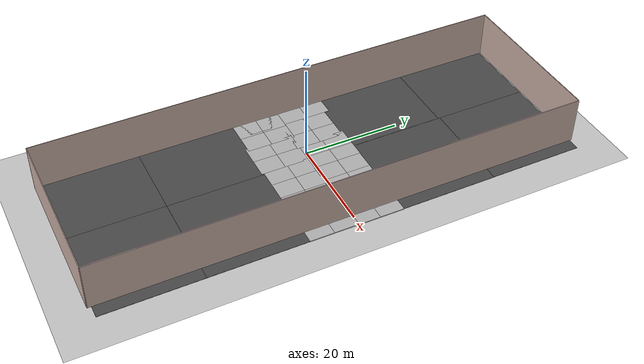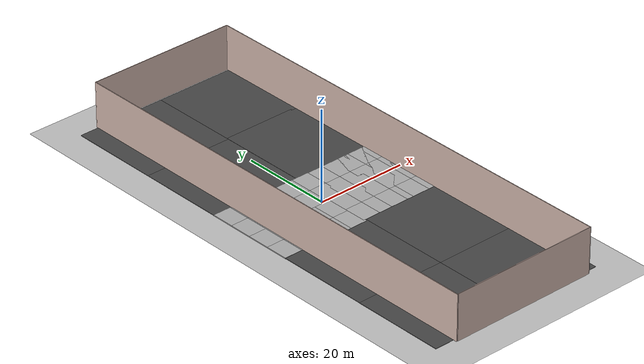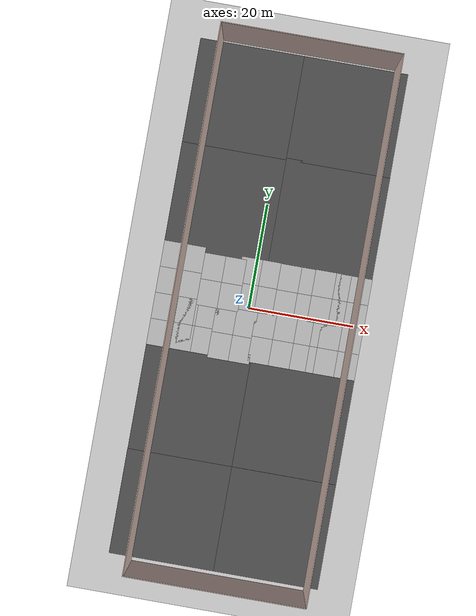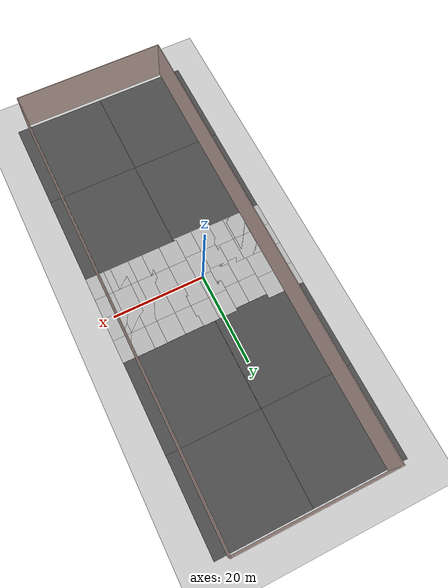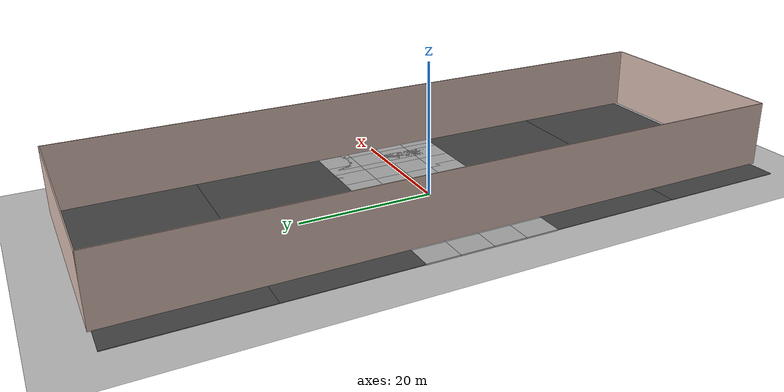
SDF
<sdf version="1.5">
 <world name="default">
  <light name="sun" type="directional">
   <pose>0 0 10 0 -0 0</pose>
   <diffuse>0.8 0.8 0.8 1</diffuse>
   <specular>0.2 0.2 0.2 1</specular>
   <attenuation>
    <range>1000</range>
    <constant>0.9</constant>
    <linear>0.01</linear>
    <quadratic>0.001</quadratic>
   </attenuation>
   <direction>-0.5 0.1 -0.9</direction>
  </light>
  <model name="ground_plane">
   <static>1</static>
   <link name="link">
    <collision name="collision">
     <geometry><plane><normal>0 0 1</normal><size>100 100</size></plane></geometry>
     <surface><friction><ode><mu>100</mu><mu2>50</mu2></ode></friction></surface>
    </collision>
    <visual name="visual">
     <cast_shadows>0</cast_shadows>
     <geometry><plane><normal>0 0 1</normal><size>100 100</size></plane></geometry>
     <material>
      <script><uri>file://media/materials/scripts/gazebo.material</uri><name>Gazebo/Grey</name></script>
     </material>
    </visual>
   </link>
  </model>
  <physics name="default_physics" default="0" type="ode">
   <max_step_size>0.001</max_step_size>
   <real_time_factor>1</real_time_factor>
   <real_time_update_rate>1000</real_time_update_rate>
   <gravity>0 0 -9.8</gravity>
   <magnetic_field>6e-06 2.3e-05 -4.2e-05</magnetic_field>
  </physics>
  <scene><ambient>0.4 0.4 0.4 1</ambient><background>0.7 0.7 0.7 1</background><shadows>1</shadows></scene>
  <audio><device>default</device></audio>
  <spherical_coordinates>
   <surface_model>EARTH_WGS84</surface_model>
   <latitude_deg>0</latitude_deg>
   <longitude_deg>0</longitude_deg>
   <elevation>0</elevation>
   <heading_deg>0</heading_deg>
  </spherical_coordinates>
  <model name="asphalt_plane">
   <static>1</static>
   <link name="link">
    <collision name="collision"><geometry><box><size>20 20 0.1</size></box></geometry></collision>
    <visual name="visual">
     <cast_shadows>0</cast_shadows>
     <geometry><box><size>20 20 0.1</size></box></geometry>
     <material>
      <script>
       <uri>model://asphalt_plane/materials/scripts</uri>
       <uri>model://asphalt_plane/materials/textures</uri>
       <name>vrc/asphalt</name>
      </script>
     </material>
    </visual>
   </link>
   <pose>-8 -40 0 0 -0 0</pose>
  </model>
  <model name="asphalt_plane_2">
   <static>1</static>
   <link name="link">
    <collision name="collision"><geometry><box><size>20 20 0.1</size></box></geometry></collision>
    <visual name="visual">
     <cast_shadows>0</cast_shadows>
     <geometry><box><size>20 20 0.1</size></box></geometry>
     <material>
      <script>
       <uri>model://asphalt_plane/materials/scripts</uri>
       <uri>model://asphalt_plane/materials/textures</uri>
       <name>vrc/asphalt</name>
      </script>
     </material>
    </visual>
   </link>
   <pose>-8 19 0 0 -0 0</pose>
  </model>
  <model name="asphalt_plane_3">
   <static>1</static>
   <link name="link">
    <collision name="collision"><geometry><box><size>20 20 0.1</size></box></geometry></collision>
    <visual name="visual">
     <cast_shadows>0</cast_shadows>
     <geometry><box><size>20 20 0.1</size></box></geometry>
     <material>
      <script>
       <uri>model://asphalt_plane/materials/scripts</uri>
       <uri>model://asphalt_plane/materials/textures</uri>
       <name>vrc/asphalt</name>
      </script>
     </material>
    </visual>
   </link>
   <pose>-8 39 0 0 -0 0</pose>
  </model>
  <model name="asphalt_plane_3_clone">
   <static>1</static>
   <link name="link">
    <collision name="collision"><geometry><box><size>20 20 0.1</size></box></geometry></collision>
    <visual name="visual">
     <cast_shadows>0</cast_shadows>
     <geometry><box><size>20 20 0.1</size></box></geometry>
     <material>
      <script>
       <uri>model://asphalt_plane/materials/scripts</uri>
       <uri>model://asphalt_plane/materials/textures</uri>
       <name>vrc/asphalt</name>
      </script>
     </material>
    </visual>
   </link>
   <pose>12 -40 0 0 -0 0</pose>
  </model>
  <model name="asphalt_plane_3_clone_2">
   <static>1</static>
   <link name="link">
    <collision name="collision"><geometry><box><size>20 20 0.1</size></box></geometry></collision>
    <visual name="visual">
     <cast_shadows>0</cast_shadows>
     <geometry><box><size>20 20 0.1</size></box></geometry>
     <material>
      <script>
       <uri>model://asphalt_plane/materials/scripts</uri>
       <uri>model://asphalt_plane/materials/textures</uri>
       <name>vrc/asphalt</name>
      </script>
     </material>
    </visual>
   </link>
   <pose>12.027 19.3791 0 0 -0 0</pose>
  </model>
  <model name="asphalt_plane_3_clone_3">
   <static>1</static>
   <link name="link">
    <collision name="collision"><geometry><box><size>20 20 0.1</size></box></geometry></collision>
    <visual name="visual">
     <cast_shadows>0</cast_shadows>
     <geometry><box><size>20 20 0.1</size></box></geometry>
     <material>
      <script>
       <uri>model://asphalt_plane/materials/scripts</uri>
       <uri>model://asphalt_plane/materials/textures</uri>
       <name>vrc/asphalt</name>
      </script>
     </material>
    </visual>
   </link>
   <pose>12 39 0 0 -0 0</pose>
  </model>
  <model name="mud_box">
   <static>1</static>
   <link name="link">
    <collision name="collision"><geometry><box><size>8 10 0.2</size></box></geometry></collision>
    <visual name="visual_1">
     <pose>-2 2.5 0 0 -0 0</pose>
     <cast_shadows>0</cast_shadows>
     <geometry><box><size>4 5 0.2</size></box></geometry>
     <material>
      <script>
       <uri>model://mud_box/materials/scripts</uri>
       <uri>model://mud_box/materials/textures</uri>
       <name>vrc/mud</name>
      </script>
     </material>
    </visual>
    <visual name="visual_2">
     <pose>2 2.5 0 0 -0 0</pose>
     <cast_shadows>0</cast_shadows>
     <geometry><box><size>4 5 0.2</size></box></geometry>
     <material>
      <script>
       <uri>model://mud_box/materials/scripts</uri>
       <uri>model://mud_box/materials/textures</uri>
       <name>vrc/mud</name>
      </script>
     </material>
    </visual>
    <visual name="visual_3">
     <pose>2 -2.5 0 0 -0 0</pose>
     <cast_shadows>0</cast_shadows>
     <geometry><box><size>4 5 0.2</size></box></geometry>
     <material>
      <script>
       <uri>model://mud_box/materials/scripts</uri>
       <uri>model://mud_box/materials/textures</uri>
       <name>vrc/mud</name>
      </script>
     </material>
    </visual>
    <visual name="visual_4">
     <pose>-2 -2.5 0 0 -0 0</pose>
     <cast_shadows>0</cast_shadows>
     <geometry><box><size>4 5 0.2</size></box></geometry>
     <material>
      <script>
       <uri>model://mud_box/materials/scripts</uri>
       <uri>model://mud_box/materials/textures</uri>
       <name>vrc/mud</name>
      </script>
     </material>
    </visual>
   </link>
   <pose>-2.1916 -5.46245 0 0 -0 0</pose>
  </model>
  <model name="mud_box_clone">
   <static>1</static>
   <link name="link">
    <collision name="collision"><geometry><box><size>8 10 0.2</size></box></geometry></collision>
    <visual name="visual_1">
     <pose>-2 2.5 0 0 -0 0</pose>
     <cast_shadows>0</cast_shadows>
     <geometry><box><size>4 5 0.2</size></box></geometry>
     <material>
      <script>
       <uri>model://mud_box/materials/scripts</uri>
       <uri>model://mud_box/materials/textures</uri>
       <name>vrc/mud</name>
      </script>
     </material>
    </visual>
    <visual name="visual_2">
     <pose>2 2.5 0 0 -0 0</pose>
     <cast_shadows>0</cast_shadows>
     <geometry><box><size>4 5 0.2</size></box></geometry>
     <material>
      <script>
       <uri>model://mud_box/materials/scripts</uri>
       <uri>model://mud_box/materials/textures</uri>
       <name>vrc/mud</name>
      </script>
     </material>
    </visual>
    <visual name="visual_3">
     <pose>2 -2.5 0 0 -0 0</pose>
     <cast_shadows>0</cast_shadows>
     <geometry><box><size>4 5 0.2</size></box></geometry>
     <material>
      <script>
       <uri>model://mud_box/materials/scripts</uri>
       <uri>model://mud_box/materials/textures</uri>
       <name>vrc/mud</name>
      </script>
     </material>
    </visual>
    <visual name="visual_4">
     <pose>-2 -2.5 0 0 -0 0</pose>
     <cast_shadows>0</cast_shadows>
     <geometry><box><size>4 5 0.2</size></box></geometry>
     <material>
      <script>
       <uri>model://mud_box/materials/scripts</uri>
       <uri>model://mud_box/materials/textures</uri>
       <name>vrc/mud</name>
      </script>
     </material>
    </visual>
   </link>
   <pose>5.42186 -5 0 0 -0 0</pose>
  </model>
  <model name="mud_box_clone_0">
   <static>1</static>
   <link name="link">
    <collision name="collision"><geometry><box><size>8 10 0.2</size></box></geometry></collision>
    <visual name="visual_1">
     <pose>-2 2.5 0 0 -0 0</pose>
     <cast_shadows>0</cast_shadows>
     <geometry><box><size>4 5 0.2</size></box></geometry>
     <material>
      <script>
       <uri>model://mud_box/materials/scripts</uri>
       <uri>model://mud_box/materials/textures</uri>
       <name>vrc/mud</name>
      </script>
     </material>
    </visual>
    <visual name="visual_2">
     <pose>2 2.5 0 0 -0 0</pose>
     <cast_shadows>0</cast_shadows>
     <geometry><box><size>4 5 0.2</size></box></geometry>
     <material>
      <script>
       <uri>model://mud_box/materials/scripts</uri>
       <uri>model://mud_box/materials/textures</uri>
       <name>vrc/mud</name>
      </script>
     </material>
    </visual>
    <visual name="visual_3">
     <pose>2 -2.5 0 0 -0 0</pose>
     <cast_shadows>0</cast_shadows>
     <geometry><box><size>4 5 0.2</size></box></geometry>
     <material>
      <script>
       <uri>model://mud_box/materials/scripts</uri>
       <uri>model://mud_box/materials/textures</uri>
       <name>vrc/mud</name>
      </script>
     </material>
    </visual>
    <visual name="visual_4">
     <pose>-2 -2.5 0 0 -0 0</pose>
     <cast_shadows>0</cast_shadows>
     <geometry><box><size>4 5 0.2</size></box></geometry>
     <material>
      <script>
       <uri>model://mud_box/materials/scripts</uri>
       <uri>model://mud_box/materials/textures</uri>
       <name>vrc/mud</name>
      </script>
     </material>
    </visual>
   </link>
   <pose>12.5135 -5 0 0 -0 0</pose>
  </model>
  <model name="mud_box_clone_1">
   <static>1</static>
   <link name="link">
    <collision name="collision"><geometry><box><size>8 10 0.2</size></box></geometry></collision>
    <visual name="visual_1">
     <pose>-2 2.5 0 0 -0 0</pose>
     <cast_shadows>0</cast_shadows>
     <geometry><box><size>4 5 0.2</size></box></geometry>
     <material>
      <script>
       <uri>model://mud_box/materials/scripts</uri>
       <uri>model://mud_box/materials/textures</uri>
       <name>vrc/mud</name>
      </script>
     </material>
    </visual>
    <visual name="visual_2">
     <pose>2 2.5 0 0 -0 0</pose>
     <cast_shadows>0</cast_shadows>
     <geometry><box><size>4 5 0.2</size></box></geometry>
     <material>
      <script>
       <uri>model://mud_box/materials/scripts</uri>
       <uri>model://mud_box/materials/textures</uri>
       <name>vrc/mud</name>
      </script>
     </material>
    </visual>
    <visual name="visual_3">
     <pose>2 -2.5 0 0 -0 0</pose>
     <cast_shadows>0</cast_shadows>
     <geometry><box><size>4 5 0.2</size></box></geometry>
     <material>
      <script>
       <uri>model://mud_box/materials/scripts</uri>
       <uri>model://mud_box/materials/textures</uri>
       <name>vrc/mud</name>
      </script>
     </material>
    </visual>
    <visual name="visual_4">
     <pose>-2 -2.5 0 0 -0 0</pose>
     <cast_shadows>0</cast_shadows>
     <geometry><box><size>4 5 0.2</size></box></geometry>
     <material>
      <script>
       <uri>model://mud_box/materials/scripts</uri>
       <uri>model://mud_box/materials/textures</uri>
       <name>vrc/mud</name>
      </script>
     </material>
    </visual>
   </link>
   <pose>18 -5 0 0 -0 0</pose>
  </model>
  <model name="mud_box_clone_2">
   <static>1</static>
   <link name="link">
    <collision name="collision"><geometry><box><size>8 10 0.2</size></box></geometry></collision>
    <visual name="visual_1">
     <pose>-2 2.5 0 0 -0 0</pose>
     <cast_shadows>0</cast_shadows>
     <geometry><box><size>4 5 0.2</size></box></geometry>
     <material>
      <script>
       <uri>model://mud_box/materials/scripts</uri>
       <uri>model://mud_box/materials/textures</uri>
       <name>vrc/mud</name>
      </script>
     </material>
    </visual>
    <visual name="visual_2">
     <pose>2 2.5 0 0 -0 0</pose>
     <cast_shadows>0</cast_shadows>
     <geometry><box><size>4 5 0.2</size></box></geometry>
     <material>
      <script>
       <uri>model://mud_box/materials/scripts</uri>
       <uri>model://mud_box/materials/textures</uri>
       <name>vrc/mud</name>
      </script>
     </material>
    </visual>
    <visual name="visual_3">
     <pose>2 -2.5 0 0 -0 0</pose>
     <cast_shadows>0</cast_shadows>
     <geometry><box><size>4 5 0.2</size></box></geometry>
     <material>
      <script>
       <uri>model://mud_box/materials/scripts</uri>
       <uri>model://mud_box/materials/textures</uri>
       <name>vrc/mud</name>
      </script>
     </material>
    </visual>
    <visual name="visual_4">
     <pose>-2 -2.5 0 0 -0 0</pose>
     <cast_shadows>0</cast_shadows>
     <geometry><box><size>4 5 0.2</size></box></geometry>
     <material>
      <script>
       <uri>model://mud_box/materials/scripts</uri>
       <uri>model://mud_box/materials/textures</uri>
       <name>vrc/mud</name>
      </script>
     </material>
    </visual>
   </link>
   <pose>-9.54837 -5 0 0 -0 0</pose>
  </model>
  <model name="mud_box_clone_3">
   <static>1</static>
   <link name="link">
    <collision name="collision"><geometry><box><size>8 10 0.2</size></box></geometry></collision>
    <visual name="visual_1">
     <pose>-2 2.5 0 0 -0 0</pose>
     <cast_shadows>0</cast_shadows>
     <geometry><box><size>4 5 0.2</size></box></geometry>
     <material>
      <script>
       <uri>model://mud_box/materials/scripts</uri>
       <uri>model://mud_box/materials/textures</uri>
       <name>vrc/mud</name>
      </script>
     </material>
    </visual>
    <visual name="visual_2">
     <pose>2 2.5 0 0 -0 0</pose>
     <cast_shadows>0</cast_shadows>
     <geometry><box><size>4 5 0.2</size></box></geometry>
     <material>
      <script>
       <uri>model://mud_box/materials/scripts</uri>
       <uri>model://mud_box/materials/textures</uri>
       <name>vrc/mud</name>
      </script>
     </material>
    </visual>
    <visual name="visual_3">
     <pose>2 -2.5 0 0 -0 0</pose>
     <cast_shadows>0</cast_shadows>
     <geometry><box><size>4 5 0.2</size></box></geometry>
     <material>
      <script>
       <uri>model://mud_box/materials/scripts</uri>
       <uri>model://mud_box/materials/textures</uri>
       <name>vrc/mud</name>
      </script>
     </material>
    </visual>
    <visual name="visual_4">
     <pose>-2 -2.5 0 0 -0 0</pose>
     <cast_shadows>0</cast_shadows>
     <geometry><box><size>4 5 0.2</size></box></geometry>
     <material>
      <script>
       <uri>model://mud_box/materials/scripts</uri>
       <uri>model://mud_box/materials/textures</uri>
       <name>vrc/mud</name>
      </script>
     </material>
    </visual>
   </link>
   <pose>-14 -5 0 0 -0 0</pose>
  </model>
  <model name="mud_box_clone_4">
   <static>1</static>
   <link name="link">
    <collision name="collision"><geometry><box><size>8 10 0.2</size></box></geometry></collision>
    <visual name="visual_1">
     <pose>-2 2.5 0 0 -0 0</pose>
     <cast_shadows>0</cast_shadows>
     <geometry><box><size>4 5 0.2</size></box></geometry>
     <material>
      <script>
       <uri>model://mud_box/materials/scripts</uri>
       <uri>model://mud_box/materials/textures</uri>
       <name>vrc/mud</name>
      </script>
     </material>
    </visual>
    <visual name="visual_2">
     <pose>2 2.5 0 0 -0 0</pose>
     <cast_shadows>0</cast_shadows>
     <geometry><box><size>4 5 0.2</size></box></geometry>
     <material>
      <script>
       <uri>model://mud_box/materials/scripts</uri>
       <uri>model://mud_box/materials/textures</uri>
       <name>vrc/mud</name>
      </script>
     </material>
    </visual>
    <visual name="visual_3">
     <pose>2 -2.5 0 0 -0 0</pose>
     <cast_shadows>0</cast_shadows>
     <geometry><box><size>4 5 0.2</size></box></geometry>
     <material>
      <script>
       <uri>model://mud_box/materials/scripts</uri>
       <uri>model://mud_box/materials/textures</uri>
       <name>vrc/mud</name>
      </script>
     </material>
    </visual>
    <visual name="visual_4">
     <pose>-2 -2.5 0 0 -0 0</pose>
     <cast_shadows>0</cast_shadows>
     <geometry><box><size>4 5 0.2</size></box></geometry>
     <material>
      <script>
       <uri>model://mud_box/materials/scripts</uri>
       <uri>model://mud_box/materials/textures</uri>
       <name>vrc/mud</name>
      </script>
     </material>
    </visual>
   </link>
   <pose>-14 5 0 0 -0 0</pose>
  </model>
  <model name="mud_box_clone_5">
   <static>1</static>
   <link name="link">
    <collision name="collision"><geometry><box><size>8 10 0.2</size></box></geometry></collision>
    <visual name="visual_1">
     <pose>-2 2.5 0 0 -0 0</pose>
     <cast_shadows>0</cast_shadows>
     <geometry><box><size>4 5 0.2</size></box></geometry>
     <material>
      <script>
       <uri>model://mud_box/materials/scripts</uri>
       <uri>model://mud_box/materials/textures</uri>
       <name>vrc/mud</name>
      </script>
     </material>
    </visual>
    <visual name="visual_2">
     <pose>2 2.5 0 0 -0 0</pose>
     <cast_shadows>0</cast_shadows>
     <geometry><box><size>4 5 0.2</size></box></geometry>
     <material>
      <script>
       <uri>model://mud_box/materials/scripts</uri>
       <uri>model://mud_box/materials/textures</uri>
       <name>vrc/mud</name>
      </script>
     </material>
    </visual>
    <visual name="visual_3">
     <pose>2 -2.5 0 0 -0 0</pose>
     <cast_shadows>0</cast_shadows>
     <geometry><box><size>4 5 0.2</size></box></geometry>
     <material>
      <script>
       <uri>model://mud_box/materials/scripts</uri>
       <uri>model://mud_box/materials/textures</uri>
       <name>vrc/mud</name>
      </script>
     </material>
    </visual>
    <visual name="visual_4">
     <pose>-2 -2.5 0 0 -0 0</pose>
     <cast_shadows>0</cast_shadows>
     <geometry><box><size>4 5 0.2</size></box></geometry>
     <material>
      <script>
       <uri>model://mud_box/materials/scripts</uri>
       <uri>model://mud_box/materials/textures</uri>
       <name>vrc/mud</name>
      </script>
     </material>
    </visual>
   </link>
   <pose>-6 4 0 0 -0 0</pose>
  </model>
  <model name="mud_box_clone_6">
   <static>1</static>
   <link name="link">
    <collision name="collision"><geometry><box><size>8 10 0.2</size></box></geometry></collision>
    <visual name="visual_1">
     <pose>-2 2.5 0 0 -0 0</pose>
     <cast_shadows>0</cast_shadows>
     <geometry><box><size>4 5 0.2</size></box></geometry>
     <material>
      <script>
       <uri>model://mud_box/materials/scripts</uri>
       <uri>model://mud_box/materials/textures</uri>
       <name>vrc/mud</name>
      </script>
     </material>
    </visual>
    <visual name="visual_2">
     <pose>2 2.5 0 0 -0 0</pose>
     <cast_shadows>0</cast_shadows>
     <geometry><box><size>4 5 0.2</size></box></geometry>
     <material>
      <script>
       <uri>model://mud_box/materials/scripts</uri>
       <uri>model://mud_box/materials/textures</uri>
       <name>vrc/mud</name>
      </script>
     </material>
    </visual>
    <visual name="visual_3">
     <pose>2 -2.5 0 0 -0 0</pose>
     <cast_shadows>0</cast_shadows>
     <geometry><box><size>4 5 0.2</size></box></geometry>
     <material>
      <script>
       <uri>model://mud_box/materials/scripts</uri>
       <uri>model://mud_box/materials/textures</uri>
       <name>vrc/mud</name>
      </script>
     </material>
    </visual>
    <visual name="visual_4">
     <pose>-2 -2.5 0 0 -0 0</pose>
     <cast_shadows>0</cast_shadows>
     <geometry><box><size>4 5 0.2</size></box></geometry>
     <material>
      <script>
       <uri>model://mud_box/materials/scripts</uri>
       <uri>model://mud_box/materials/textures</uri>
       <name>vrc/mud</name>
      </script>
     </material>
    </visual>
   </link>
   <pose>1 4.53238 0 0 -0 0</pose>
  </model>
  <model name="mud_box_clone_7">
   <static>1</static>
   <link name="link">
    <collision name="collision"><geometry><box><size>8 10 0.2</size></box></geometry></collision>
    <visual name="visual_1">
     <pose>-2 2.5 0 0 -0 0</pose>
     <cast_shadows>0</cast_shadows>
     <geometry><box><size>4 5 0.2</size></box></geometry>
     <material>
      <script>
       <uri>model://mud_box/materials/scripts</uri>
       <uri>model://mud_box/materials/textures</uri>
       <name>vrc/mud</name>
      </script>
     </material>
    </visual>
    <visual name="visual_2">
     <pose>2 2.5 0 0 -0 0</pose>
     <cast_shadows>0</cast_shadows>
     <geometry><box><size>4 5 0.2</size></box></geometry>
     <material>
      <script>
       <uri>model://mud_box/materials/scripts</uri>
       <uri>model://mud_box/materials/textures</uri>
       <name>vrc/mud</name>
      </script>
     </material>
    </visual>
    <visual name="visual_3">
     <pose>2 -2.5 0 0 -0 0</pose>
     <cast_shadows>0</cast_shadows>
     <geometry><box><size>4 5 0.2</size></box></geometry>
     <material>
      <script>
       <uri>model://mud_box/materials/scripts</uri>
       <uri>model://mud_box/materials/textures</uri>
       <name>vrc/mud</name>
      </script>
     </material>
    </visual>
    <visual name="visual_4">
     <pose>-2 -2.5 0 0 -0 0</pose>
     <cast_shadows>0</cast_shadows>
     <geometry><box><size>4 5 0.2</size></box></geometry>
     <material>
      <script>
       <uri>model://mud_box/materials/scripts</uri>
       <uri>model://mud_box/materials/textures</uri>
       <name>vrc/mud</name>
      </script>
     </material>
    </visual>
   </link>
   <pose>8.54047 4.46328 0 0 -0 0</pose>
  </model>
  <model name="mud_box_clone_8">
   <static>1</static>
   <link name="link">
    <collision name="collision"><geometry><box><size>8 10 0.2</size></box></geometry></collision>
    <visual name="visual_1">
     <pose>-2 2.5 0 0 -0 0</pose>
     <cast_shadows>0</cast_shadows>
     <geometry><box><size>4 5 0.2</size></box></geometry>
     <material>
      <script>
       <uri>model://mud_box/materials/scripts</uri>
       <uri>model://mud_box/materials/textures</uri>
       <name>vrc/mud</name>
      </script>
     </material>
    </visual>
    <visual name="visual_2">
     <pose>2 2.5 0 0 -0 0</pose>
     <cast_shadows>0</cast_shadows>
     <geometry><box><size>4 5 0.2</size></box></geometry>
     <material>
      <script>
       <uri>model://mud_box/materials/scripts</uri>
       <uri>model://mud_box/materials/textures</uri>
       <name>vrc/mud</name>
      </script>
     </material>
    </visual>
    <visual name="visual_3">
     <pose>2 -2.5 0 0 -0 0</pose>
     <cast_shadows>0</cast_shadows>
     <geometry><box><size>4 5 0.2</size></box></geometry>
     <material>
      <script>
       <uri>model://mud_box/materials/scripts</uri>
       <uri>model://mud_box/materials/textures</uri>
       <name>vrc/mud</name>
      </script>
     </material>
    </visual>
    <visual name="visual_4">
     <pose>-2 -2.5 0 0 -0 0</pose>
     <cast_shadows>0</cast_shadows>
     <geometry><box><size>4 5 0.2</size></box></geometry>
     <material>
      <script>
       <uri>model://mud_box/materials/scripts</uri>
       <uri>model://mud_box/materials/textures</uri>
       <name>vrc/mud</name>
      </script>
     </material>
    </visual>
   </link>
   <pose>15.2091 4.51784 0 0 -0 0</pose>
  </model>
  <model name="mud_box_clone_9">
   <static>1</static>
   <link name="link">
    <collision name="collision"><geometry><box><size>8 10 0.2</size></box></geometry></collision>
    <visual name="visual_1">
     <pose>-2 2.5 0 0 -0 0</pose>
     <cast_shadows>0</cast_shadows>
     <geometry><box><size>4 5 0.2</size></box></geometry>
     <material>
      <script>
       <uri>model://mud_box/materials/scripts</uri>
       <uri>model://mud_box/materials/textures</uri>
       <name>vrc/mud</name>
      </script>
     </material>
    </visual>
    <visual name="visual_2">
     <pose>2 2.5 0 0 -0 0</pose>
     <cast_shadows>0</cast_shadows>
     <geometry><box><size>4 5 0.2</size></box></geometry>
     <material>
      <script>
       <uri>model://mud_box/materials/scripts</uri>
       <uri>model://mud_box/materials/textures</uri>
       <name>vrc/mud</name>
      </script>
     </material>
    </visual>
    <visual name="visual_3">
     <pose>2 -2.5 0 0 -0 0</pose>
     <cast_shadows>0</cast_shadows>
     <geometry><box><size>4 5 0.2</size></box></geometry>
     <material>
      <script>
       <uri>model://mud_box/materials/scripts</uri>
       <uri>model://mud_box/materials/textures</uri>
       <name>vrc/mud</name>
      </script>
     </material>
    </visual>
    <visual name="visual_4">
     <pose>-2 -2.5 0 0 -0 0</pose>
     <cast_shadows>0</cast_shadows>
     <geometry><box><size>4 5 0.2</size></box></geometry>
     <material>
      <script>
       <uri>model://mud_box/materials/scripts</uri>
       <uri>model://mud_box/materials/textures</uri>
       <name>vrc/mud</name>
      </script>
     </material>
    </visual>
   </link>
   <pose>18.0762 4.47044 0 0 -0 0</pose>
  </model>
  <model name="asphalt_plane_0_0">
   <static>1</static>
   <link name="link">
    <collision name="collision"><geometry><box><size>20 20 0.1</size></box></geometry></collision>
    <visual name="visual">
     <cast_shadows>0</cast_shadows>
     <geometry><box><size>20 20 0.1</size></box></geometry>
     <material>
      <script>
       <uri>model://asphalt_plane/materials/scripts</uri>
       <uri>model://asphalt_plane/materials/textures</uri>
       <name>vrc/asphalt</name>
      </script>
     </material>
    </visual>
   </link>
   <pose>-7.96805 -20.0211 0 0 -0 0</pose>
  </model>
  <model name="asphalt_plane_0_0_clone">
   <static>1</static>
   <link name="link">
    <collision name="collision"><geometry><box><size>20 20 0.1</size></box></geometry></collision>
    <visual name="visual">
     <cast_shadows>0</cast_shadows>
     <geometry><box><size>20 20 0.1</size></box></geometry>
     <material>
      <script>
       <uri>model://asphalt_plane/materials/scripts</uri>
       <uri>model://asphalt_plane/materials/textures</uri>
       <name>vrc/asphalt</name>
      </script>
     </material>
    </visual>
   </link>
   <pose>12.0043 -19.9952 0 0 -0 0</pose>
  </model>
  <model name="big_closer_walls">
   <pose>2.871 -0.693 0 0 -0 1.5708</pose>
   <link name="Wall_2">
    <collision name="Wall_2_Collision">
     <geometry><box><size>100.25 0.15 10</size></box></geometry>
     <pose>0 0 5 0 -0 0</pose>
    </collision>
    <visual name="Wall_2_Visual">
     <pose>0 0 5 0 -0 0</pose>
     <geometry><box><size>100.25 0.15 10</size></box></geometry>
     <material>
      <script><uri>file://media/materials/scripts/gazebo.material</uri><name>Gazebo/Grey</name></script>
      <ambient>0.760784 0.662745 0.627451 1</ambient>
     </material>
    </visual>
    <pose>0 16.55 0 0 -0 0</pose>
   </link>
   <link name="Wall_3">
    <collision name="Wall_3_Collision">
     <geometry><box><size>33.25 0.15 10</size></box></geometry>
     <pose>0 0 5 0 -0 0</pose>
    </collision>
    <visual name="Wall_3_Visual">
     <pose>0 0 5 0 -0 0</pose>
     <geometry><box><size>33.25 0.15 10</size></box></geometry>
     <material>
      <script><uri>file://media/materials/scripts/gazebo.material</uri><name>Gazebo/Grey</name></script>
      <ambient>0.760784 0.662745 0.627451 1</ambient>
     </material>
    </visual>
    <pose>50.05 0 0 0 0 -1.5708</pose>
   </link>
   <link name="Wall_4">
    <collision name="Wall_4_Collision">
     <geometry><box><size>100.25 0.15 10</size></box></geometry>
     <pose>0 0 5 0 -0 0</pose>
    </collision>
    <visual name="Wall_4_Visual">
     <pose>0 0 5 0 -0 0</pose>
     <geometry><box><size>100.25 0.15 10</size></box></geometry>
     <material>
      <script><uri>file://media/materials/scripts/gazebo.material</uri><name>Gazebo/Grey</name></script>
      <ambient>0.760784 0.662745 0.627451 1</ambient>
     </material>
    </visual>
    <pose>0 -16.55 0 0 -0 3.14159</pose>
   </link>
   <link name="Wall_5">
    <collision name="Wall_5_Collision">
     <geometry><box><size>33 0.15 10</size></box></geometry>
     <pose>0 0 5 0 -0 0</pose>
    </collision>
    <visual name="Wall_5_Visual">
     <pose>0 0 5 0 -0 0</pose>
     <geometry><box><size>33 0.15 10</size></box></geometry>
     <material>
      <script><uri>file://media/materials/scripts/gazebo.material</uri><name>Gazebo/Grey</name></script>
      <ambient>0.760784 0.662745 0.627451 1</ambient>
     </material>
    </visual>
    <pose>-50.05 -0.125 0 0 -0 1.5708</pose>
   </link>
   <static>1</static>
  </model>
 </world>
</sdf>
